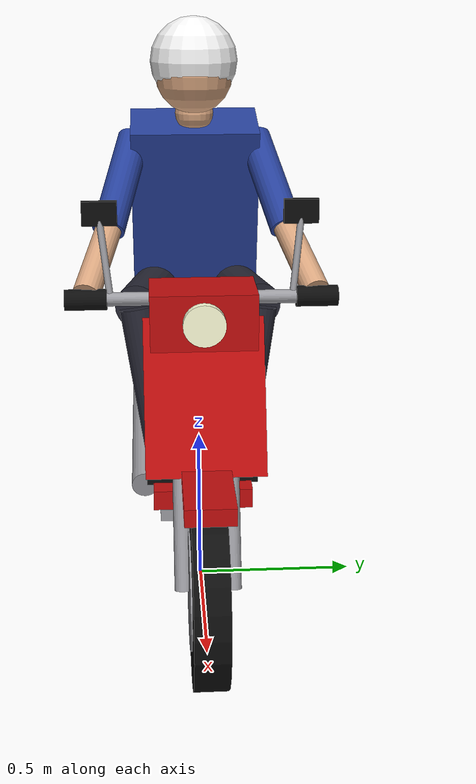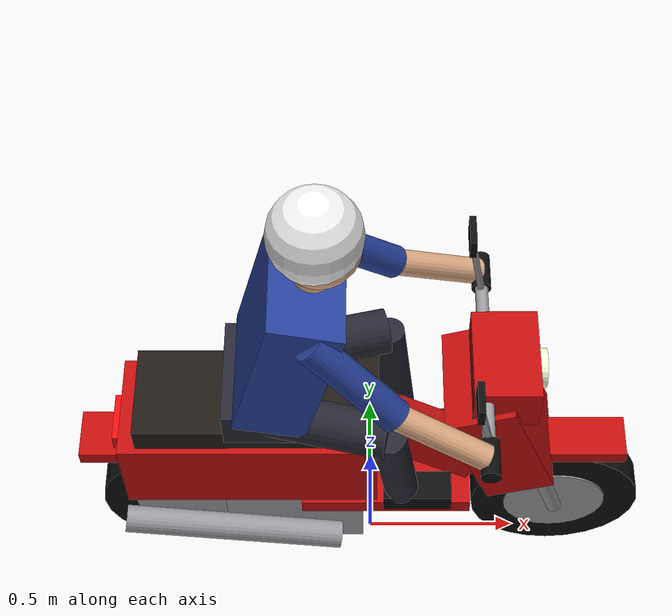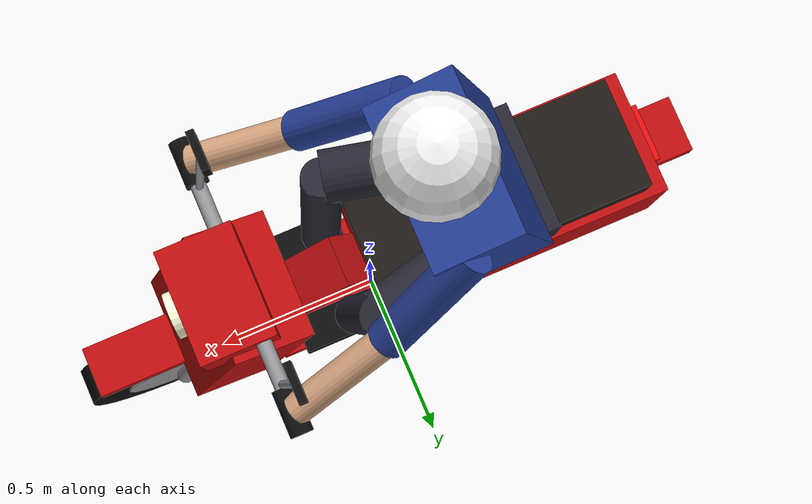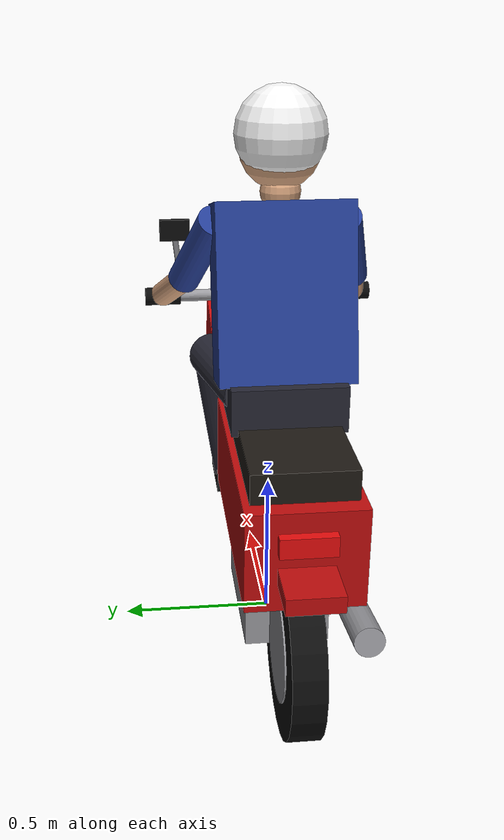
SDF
<?xml version="1.0" ?>
<sdf version="1.6">
  <model name="motorbike_red">
    <static>true</static>
    <link name="link">
      <collision name="collision">
        <pose>0 0 0.5 0 0 0</pose>
        <geometry><box><size>1.8 0.7 1.0</size></box></geometry>
      </collision>
      <visual name="rear_tire">
        <pose>-0.6200 0.0000 0.2800 1.5708 0.0000 0.0000</pose>
        <geometry><cylinder><radius>0.28</radius><length>0.1</length></cylinder></geometry>
        <material><ambient>0.05 0.05 0.05 1</ambient><diffuse>0.05 0.05 0.05 1</diffuse><specular>0.2 0.2 0.2 1</specular></material>
      </visual>
      <visual name="rear_rim">
        <pose>-0.6200 0.0000 0.2800 1.5708 0.0000 0.0000</pose>
        <geometry><cylinder><radius>0.17</radius><length>0.11</length></cylinder></geometry>
        <material><ambient>0.6 0.6 0.62 1</ambient><diffuse>0.6 0.6 0.62 1</diffuse><specular>0.2 0.2 0.2 1</specular></material>
      </visual>
      <visual name="front_tire">
        <pose>0.6200 0.0000 0.2800 1.5708 0.0000 0.0000</pose>
        <geometry><cylinder><radius>0.28</radius><length>0.1</length></cylinder></geometry>
        <material><ambient>0.05 0.05 0.05 1</ambient><diffuse>0.05 0.05 0.05 1</diffuse><specular>0.2 0.2 0.2 1</specular></material>
      </visual>
      <visual name="front_rim">
        <pose>0.6200 0.0000 0.2800 1.5708 0.0000 0.0000</pose>
        <geometry><cylinder><radius>0.17</radius><length>0.11</length></cylinder></geometry>
        <material><ambient>0.6 0.6 0.62 1</ambient><diffuse>0.6 0.6 0.62 1</diffuse><specular>0.2 0.2 0.2 1</specular></material>
      </visual>
      <visual name="fork_l">
        <pose>0.5100 0.0700 0.6150 0.0000 0.3173 3.1416</pose>
        <geometry><cylinder><radius>0.025</radius><length>0.7051950084905593</length></cylinder></geometry>
        <material><ambient>0.6 0.6 0.62 1</ambient><diffuse>0.6 0.6 0.62 1</diffuse><specular>0.2 0.2 0.2 1</specular></material>
      </visual>
      <visual name="fork_r">
        <pose>0.5100 -0.0700 0.6150 0.0000 0.3173 3.1416</pose>
        <geometry><cylinder><radius>0.025</radius><length>0.7051950084905593</length></cylinder></geometry>
        <material><ambient>0.6 0.6 0.62 1</ambient><diffuse>0.6 0.6 0.62 1</diffuse><specular>0.2 0.2 0.2 1</specular></material>
      </visual>
      <visual name="front_fender">
        <pose>0.6200 0.0000 0.6000 0.0000 0.0000 0.0000</pose>
        <geometry><box><size>0.4 0.14 0.05</size></box></geometry>
        <material><ambient>0.75 0.05 0.05 1</ambient><diffuse>0.75 0.05 0.05 1</diffuse><specular>0.2 0.2 0.2 1</specular></material>
      </visual>
      <visual name="front_cowl">
        <pose>0.4000 0.0000 0.7800 0.0000 -0.3500 0.0000</pose>
        <geometry><box><size>0.22 0.34 0.45</size></box></geometry>
        <material><ambient>0.75 0.05 0.05 1</ambient><diffuse>0.75 0.05 0.05 1</diffuse><specular>0.2 0.2 0.2 1</specular></material>
      </visual>
      <visual name="headlight_housing">
        <pose>0.4000 0.0000 1.0300 0.0000 0.0000 0.0000</pose>
        <geometry><box><size>0.2 0.3 0.16</size></box></geometry>
        <material><ambient>0.75 0.05 0.05 1</ambient><diffuse>0.75 0.05 0.05 1</diffuse><specular>0.2 0.2 0.2 1</specular></material>
      </visual>
      <visual name="headlight">
        <pose>0.5100 0.0000 1.0300 0.0000 1.5708 0.0000</pose>
        <geometry><cylinder><radius>0.06</radius><length>0.03</length></cylinder></geometry>
        <material><ambient>1.0 1.0 0.85 1</ambient><diffuse>1.0 1.0 0.85 1</diffuse><specular>0.2 0.2 0.2 1</specular></material>
      </visual>
      <visual name="handlebar">
        <pose>0.3400 0.0000 1.0600 1.5708 0.0000 0.0000</pose>
        <geometry><cylinder><radius>0.02</radius><length>0.72</length></cylinder></geometry>
        <material><ambient>0.6 0.6 0.62 1</ambient><diffuse>0.6 0.6 0.62 1</diffuse><specular>0.2 0.2 0.2 1</specular></material>
      </visual>
      <visual name="grip_l">
        <pose>0.3400 0.3300 1.0600 1.5708 0.0000 0.0000</pose>
        <geometry><cylinder><radius>0.03</radius><length>0.12</length></cylinder></geometry>
        <material><ambient>0.05 0.05 0.05 1</ambient><diffuse>0.05 0.05 0.05 1</diffuse><specular>0.2 0.2 0.2 1</specular></material>
      </visual>
      <visual name="grip_r">
        <pose>0.3400 -0.3300 1.0600 1.5708 0.0000 0.0000</pose>
        <geometry><cylinder><radius>0.03</radius><length>0.12</length></cylinder></geometry>
        <material><ambient>0.05 0.05 0.05 1</ambient><diffuse>0.05 0.05 0.05 1</diffuse><specular>0.2 0.2 0.2 1</specular></material>
      </visual>
      <visual name="mirror_stem_l">
        <pose>0.3200 0.2730 1.1700 0.0000 0.2135 2.5652</pose>
        <geometry><cylinder><radius>0.01</radius><length>0.22511330480449174</length></cylinder></geometry>
        <material><ambient>0.6 0.6 0.62 1</ambient><diffuse>0.6 0.6 0.62 1</diffuse><specular>0.2 0.2 0.2 1</specular></material>
      </visual>
      <visual name="mirror_l">
        <pose>0.3000 0.2860 1.3000 0.0000 0.0000 0.0000</pose>
        <geometry><box><size>0.02 0.1 0.07</size></box></geometry>
        <material><ambient>0.05 0.05 0.05 1</ambient><diffuse>0.05 0.05 0.05 1</diffuse><specular>0.2 0.2 0.2 1</specular></material>
      </visual>
      <visual name="mirror_stem_r">
        <pose>0.3200 -0.2730 1.1700 0.0000 0.2135 -2.5652</pose>
        <geometry><cylinder><radius>0.01</radius><length>0.22511330480449174</length></cylinder></geometry>
        <material><ambient>0.6 0.6 0.62 1</ambient><diffuse>0.6 0.6 0.62 1</diffuse><specular>0.2 0.2 0.2 1</specular></material>
      </visual>
      <visual name="mirror_r">
        <pose>0.3000 -0.2860 1.3000 0.0000 0.0000 0.0000</pose>
        <geometry><box><size>0.02 0.1 0.07</size></box></geometry>
        <material><ambient>0.05 0.05 0.05 1</ambient><diffuse>0.05 0.05 0.05 1</diffuse><specular>0.2 0.2 0.2 1</specular></material>
      </visual>
      <visual name="floorboard">
        <pose>0.0500 0.0000 0.4200 0.0000 0.0000 0.0000</pose>
        <geometry><box><size>0.55 0.3 0.06</size></box></geometry>
        <material><ambient>0.75 0.05 0.05 1</ambient><diffuse>0.75 0.05 0.05 1</diffuse><specular>0.2 0.2 0.2 1</specular></material>
      </visual>
      <visual name="frame_tube">
        <pose>0.2000 0.0000 0.6200 0.0000 0.6000 0.0000</pose>
        <geometry><box><size>0.35 0.14 0.12</size></box></geometry>
        <material><ambient>0.75 0.05 0.05 1</ambient><diffuse>0.75 0.05 0.05 1</diffuse><specular>0.2 0.2 0.2 1</specular></material>
      </visual>
      <visual name="engine">
        <pose>-0.2500 0.0000 0.3200 0.0000 0.0000 0.0000</pose>
        <geometry><box><size>0.45 0.26 0.28</size></box></geometry>
        <material><ambient>0.6 0.6 0.62 1</ambient><diffuse>0.6 0.6 0.62 1</diffuse><specular>0.2 0.2 0.2 1</specular></material>
      </visual>
      <visual name="rear_body">
        <pose>-0.3800 0.0000 0.6600 0.0000 0.0000 0.0000</pose>
        <geometry><box><size>0.8 0.34 0.3</size></box></geometry>
        <material><ambient>0.75 0.05 0.05 1</ambient><diffuse>0.75 0.05 0.05 1</diffuse><specular>0.2 0.2 0.2 1</specular></material>
      </visual>
      <visual name="seat">
        <pose>-0.3500 0.0000 0.8550 0.0000 0.0000 0.0000</pose>
        <geometry><box><size>0.75 0.3 0.09</size></box></geometry>
        <material><ambient>0.12 0.1 0.08 1</ambient><diffuse>0.12 0.1 0.08 1</diffuse><specular>0.2 0.2 0.2 1</specular></material>
      </visual>
      <visual name="rear_fender">
        <pose>-0.7800 0.0000 0.6200 0.0000 0.0000 0.0000</pose>
        <geometry><box><size>0.3 0.16 0.05</size></box></geometry>
        <material><ambient>0.75 0.05 0.05 1</ambient><diffuse>0.75 0.05 0.05 1</diffuse><specular>0.2 0.2 0.2 1</specular></material>
      </visual>
      <visual name="taillight">
        <pose>-0.7900 0.0000 0.7200 0.0000 0.0000 0.0000</pose>
        <geometry><box><size>0.04 0.16 0.06</size></box></geometry>
        <material><ambient>0.9 0.05 0.05 1</ambient><diffuse>0.9 0.05 0.05 1</diffuse><specular>0.2 0.2 0.2 1</specular></material>
      </visual>
      <visual name="exhaust">
        <pose>-0.4500 -0.1800 0.3400 0.0000 1.4010 3.1416</pose>
        <geometry><cylinder><radius>0.045</radius><length>0.7102112361825882</length></cylinder></geometry>
        <material><ambient>0.6 0.6 0.62 1</ambient><diffuse>0.6 0.6 0.62 1</diffuse><specular>0.2 0.2 0.2 1</specular></material>
      </visual>
      <visual name="pelvis">
        <pose>-0.3200 0.0000 0.9500 0.0000 0.0000 0.0000</pose>
        <geometry><box><size>0.25 0.34 0.14</size></box></geometry>
        <material><ambient>0.15 0.15 0.2 1</ambient><diffuse>0.15 0.15 0.2 1</diffuse><specular>0.2 0.2 0.2 1</specular></material>
      </visual>
      <visual name="torso">
        <pose>-0.2400 0.0000 1.2400 0.0000 0.2500 0.0000</pose>
        <geometry><box><size>0.22 0.4 0.52</size></box></geometry>
        <material><ambient>0.15 0.25 0.6 1</ambient><diffuse>0.15 0.25 0.6 1</diffuse><specular>0.2 0.2 0.2 1</specular></material>
      </visual>
      <visual name="neck">
        <pose>-0.1600 0.0000 1.5200 0.0000 0.0000 0.0000</pose>
        <geometry><sphere><radius>0.06</radius></sphere></geometry>
        <material><ambient>0.85 0.65 0.5 1</ambient><diffuse>0.85 0.65 0.5 1</diffuse><specular>0.2 0.2 0.2 1</specular></material>
      </visual>
      <visual name="head">
        <pose>-0.1400 0.0000 1.6400 0.0000 0.0000 0.0000</pose>
        <geometry><sphere><radius>0.12</radius></sphere></geometry>
        <material><ambient>0.85 0.65 0.5 1</ambient><diffuse>0.85 0.65 0.5 1</diffuse><specular>0.2 0.2 0.2 1</specular></material>
      </visual>
      <visual name="helmet">
        <pose>-0.1500 0.0000 1.6800 0.0000 0.0000 0.0000</pose>
        <geometry><sphere><radius>0.135</radius></sphere></geometry>
        <material><ambient>0.95 0.95 0.95 1</ambient><diffuse>0.95 0.95 0.95 1</diffuse><specular>0.2 0.2 0.2 1</specular></material>
      </visual>
      <visual name="upper_arm_l">
        <pose>-0.0500 0.2300 1.3200 0.0000 2.3299 0.3218</pose>
        <geometry><cylinder><radius>0.05</radius><length>0.3487119154832539</length></cylinder></geometry>
        <material><ambient>0.15 0.25 0.6 1</ambient><diffuse>0.15 0.25 0.6 1</diffuse><specular>0.2 0.2 0.2 1</specular></material>
      </visual>
      <visual name="forearm_l">
        <pose>0.2000 0.3000 1.1350 0.0000 2.0241 0.2268</pose>
        <geometry><cylinder><radius>0.04</radius><length>0.2968164415931166</length></cylinder></geometry>
        <material><ambient>0.85 0.65 0.5 1</ambient><diffuse>0.85 0.65 0.5 1</diffuse><specular>0.2 0.2 0.2 1</specular></material>
      </visual>
      <visual name="thigh_l">
        <pose>-0.1250 0.1500 0.9500 0.0000 1.5708 0.2247</pose>
        <geometry><cylinder><radius>0.07</radius><length>0.3590264614203248</length></cylinder></geometry>
        <material><ambient>0.15 0.15 0.2 1</ambient><diffuse>0.15 0.15 0.2 1</diffuse><specular>0.2 0.2 0.2 1</specular></material>
      </visual>
      <visual name="shin_l">
        <pose>0.0750 0.1550 0.7250 0.0000 2.9527 -0.9505</pose>
        <geometry><cylinder><radius>0.055</radius><length>0.4581484475582122</length></cylinder></geometry>
        <material><ambient>0.15 0.15 0.2 1</ambient><diffuse>0.15 0.15 0.2 1</diffuse><specular>0.2 0.2 0.2 1</specular></material>
      </visual>
      <visual name="shoe_l">
        <pose>0.1500 0.1200 0.4800 0.0000 0.0000 0.0000</pose>
        <geometry><box><size>0.22 0.1 0.07</size></box></geometry>
        <material><ambient>0.05 0.05 0.05 1</ambient><diffuse>0.05 0.05 0.05 1</diffuse><specular>0.2 0.2 0.2 1</specular></material>
      </visual>
      <visual name="upper_arm_r">
        <pose>-0.0500 -0.2300 1.3200 0.0000 2.3299 -0.3218</pose>
        <geometry><cylinder><radius>0.05</radius><length>0.3487119154832539</length></cylinder></geometry>
        <material><ambient>0.15 0.25 0.6 1</ambient><diffuse>0.15 0.25 0.6 1</diffuse><specular>0.2 0.2 0.2 1</specular></material>
      </visual>
      <visual name="forearm_r">
        <pose>0.2000 -0.3000 1.1350 0.0000 2.0241 -0.2268</pose>
        <geometry><cylinder><radius>0.04</radius><length>0.2968164415931166</length></cylinder></geometry>
        <material><ambient>0.85 0.65 0.5 1</ambient><diffuse>0.85 0.65 0.5 1</diffuse><specular>0.2 0.2 0.2 1</specular></material>
      </visual>
      <visual name="thigh_r">
        <pose>-0.1250 -0.1500 0.9500 0.0000 1.5708 -0.2247</pose>
        <geometry><cylinder><radius>0.07</radius><length>0.3590264614203248</length></cylinder></geometry>
        <material><ambient>0.15 0.15 0.2 1</ambient><diffuse>0.15 0.15 0.2 1</diffuse><specular>0.2 0.2 0.2 1</specular></material>
      </visual>
      <visual name="shin_r">
        <pose>0.0750 -0.1550 0.7250 0.0000 2.9527 0.9505</pose>
        <geometry><cylinder><radius>0.055</radius><length>0.4581484475582122</length></cylinder></geometry>
        <material><ambient>0.15 0.15 0.2 1</ambient><diffuse>0.15 0.15 0.2 1</diffuse><specular>0.2 0.2 0.2 1</specular></material>
      </visual>
      <visual name="shoe_r">
        <pose>0.1500 -0.1200 0.4800 0.0000 0.0000 0.0000</pose>
        <geometry><box><size>0.22 0.1 0.07</size></box></geometry>
        <material><ambient>0.05 0.05 0.05 1</ambient><diffuse>0.05 0.05 0.05 1</diffuse><specular>0.2 0.2 0.2 1</specular></material>
      </visual>
    </link>
  </model>
</sdf>
